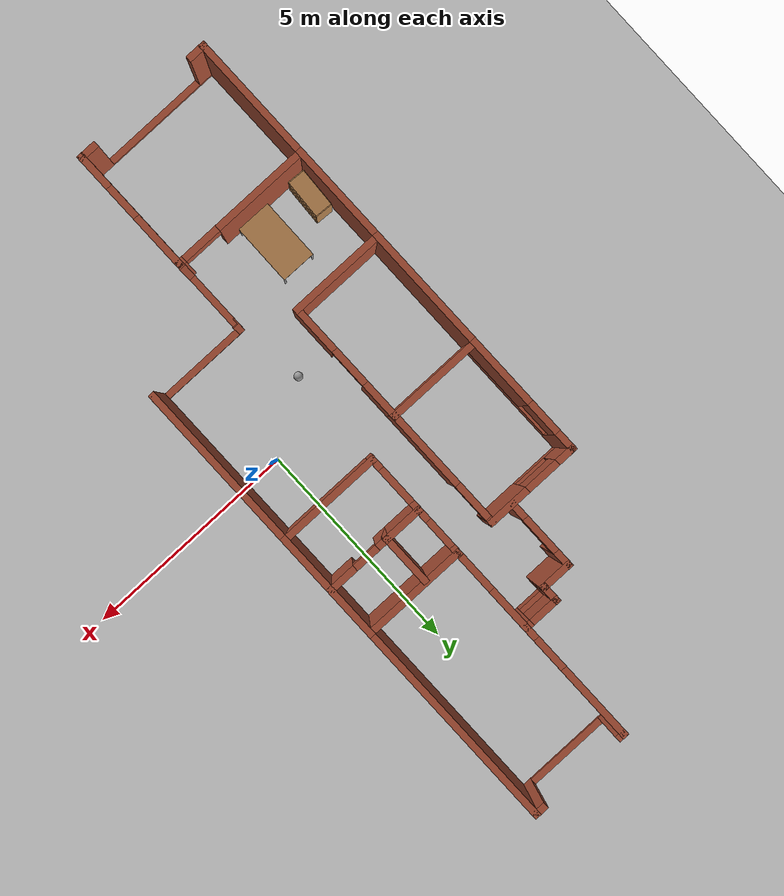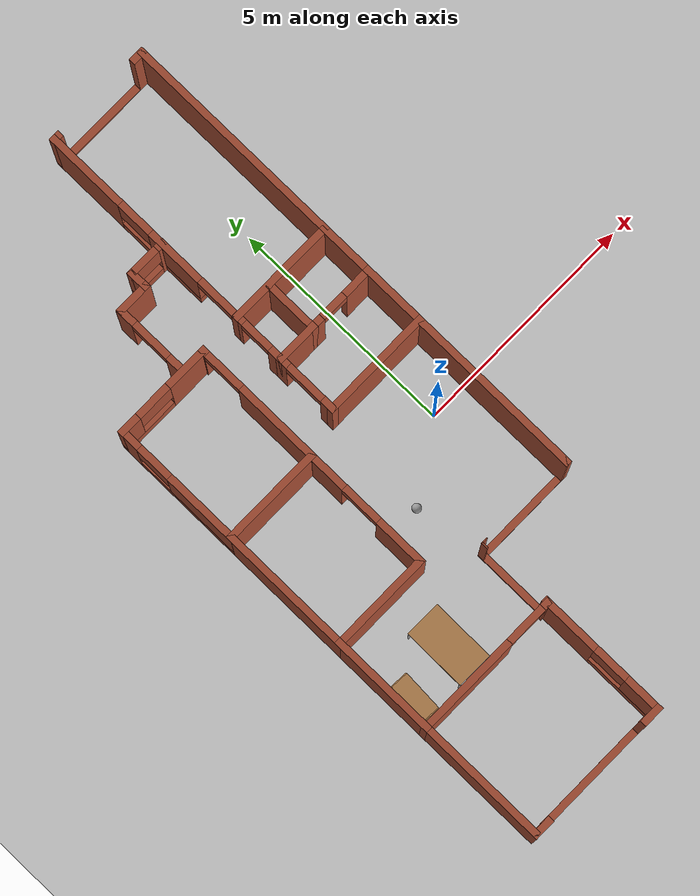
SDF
<sdf version="1.6">
 <world name="default">
  <plugin name="hello" filename="libhello.so"/>
  <light name="sun" type="directional">
   <pose>0 0 10 0 -0 0</pose>
   <diffuse>0.8 0.8 0.8 1</diffuse>
   <specular>0.1 0.1 0.1 1</specular>
   <attenuation>
    <range>1000</range>
    <constant>0.9</constant>
    <linear>0.01</linear>
    <quadratic>0.001</quadratic>
   </attenuation>
   <direction>-0.5 0.5 -1</direction>
  </light>
  <model name="ground_plane">
   <static>1</static>
   <link name="link">
    <collision name="collision">
     <geometry><plane><normal>0 0 1</normal><size>100 100</size></plane></geometry>
     <surface><friction><ode><mu>100</mu><mu2>50</mu2></ode></friction></surface>
    </collision>
    <visual name="visual">
     <cast_shadows>0</cast_shadows>
     <geometry><plane><normal>0 0 1</normal><size>100 100</size></plane></geometry>
     <material>
      <script><uri>file://media/materials/scripts/gazebo.material</uri><name>Gazebo/Grey</name></script>
     </material>
    </visual>
   </link>
  </model>
  <gravity>0 0 -9.8</gravity>
  <magnetic_field>6e-06 2.3e-05 -4.2e-05</magnetic_field>
  <atmosphere type="adiabatic"/>
  <physics name="default_physics" default="0" type="ode">
   <max_step_size>0.001</max_step_size>
   <real_time_factor>1</real_time_factor>
   <real_time_update_rate>1000</real_time_update_rate>
  </physics>
  <scene><ambient>0.4 0.4 0.4 1</ambient><background>0.7 0.7 0.7 1</background><shadows>1</shadows></scene>
  <spherical_coordinates>
   <surface_model>EARTH_WGS84</surface_model>
   <latitude_deg>0</latitude_deg>
   <longitude_deg>0</longitude_deg>
   <elevation>0</elevation>
   <heading_deg>0</heading_deg>
  </spherical_coordinates>
  <model name="Home">
   <pose>-1.82753 0.8177 0 0 -0 0</pose>
   <link name="Wall_10">
    <collision name="Wall_10_Collision">
     <geometry><box><size>1.3 0.15 2.5</size></box></geometry>
     <pose>0 0 1.25 0 -0 0</pose>
    </collision>
    <visual name="Wall_10_Visual">
     <pose>0 0 1.25 0 -0 0</pose>
     <geometry><box><size>1.3 0.15 2.5</size></box></geometry>
     <material>
      <script><uri>file://media/materials/scripts/gazebo.material</uri><name>Gazebo/Bricks</name></script>
      <ambient>1 1 1 1</ambient>
     </material>
    </visual>
    <pose>2.70626 2.39506 0 0 0 -1.5708</pose>
   </link>
   <link name="Wall_12">
    <pose>0.356264 2.39506 0 0 0 -1.5708</pose>
    <visual name="Wall_12_Visual_0">
     <pose>-0.527825 0 1.25 0 -0 0</pose>
     <geometry><box><size>0.24435 0.15 2.5</size></box></geometry>
     <material>
      <script><uri>file://media/materials/scripts/gazebo.material</uri><name>Gazebo/Bricks</name></script>
      <ambient>1 1 1 1</ambient>
     </material>
    </visual>
    <collision name="Wall_12_Collision_0">
     <geometry><box><size>0.24435 0.15 2.5</size></box></geometry>
     <pose>-0.527825 0 1.25 0 -0 0</pose>
    </collision>
    <visual name="Wall_12_Visual_1">
     <pose>0.472175 0 1.25 0 -0 0</pose>
     <geometry><box><size>0.35565 0.15 2.5</size></box></geometry>
     <material>
      <script><uri>file://media/materials/scripts/gazebo.material</uri><name>Gazebo/Bricks</name></script>
      <ambient>1 1 1 1</ambient>
     </material>
    </visual>
    <collision name="Wall_12_Collision_1">
     <geometry><box><size>0.35565 0.15 2.5</size></box></geometry>
     <pose>0.472175 0 1.25 0 -0 0</pose>
    </collision>
    <visual name="Wall_12_Visual_2">
     <pose>-0.05565 0 2.25 0 -0 0</pose>
     <geometry><box><size>0.7 0.15 0.5</size></box></geometry>
     <material>
      <script><uri>file://media/materials/scripts/gazebo.material</uri><name>Gazebo/Bricks</name></script>
      <ambient>1 1 1 1</ambient>
     </material>
    </visual>
    <collision name="Wall_12_Collision_2">
     <geometry><box><size>0.7 0.15 0.5</size></box></geometry>
     <pose>-0.05565 0 2.25 0 -0 0</pose>
    </collision>
   </link>
   <link name="Wall_14">
    <collision name="Wall_14_Collision">
     <geometry><box><size>1 0.15 2.5</size></box></geometry>
     <pose>0 0 1.25 0 -0 0</pose>
    </collision>
    <visual name="Wall_14_Visual">
     <pose>0 0 1.25 0 -0 0</pose>
     <geometry><box><size>1 0.15 2.5</size></box></geometry>
     <material>
      <script><uri>file://media/materials/scripts/gazebo.material</uri><name>Gazebo/Bricks</name></script>
      <ambient>1 1 1 1</ambient>
     </material>
    </visual>
    <pose>0.781264 1.82006 0 0 -0 0</pose>
   </link>
   <link name="Wall_15">
    <collision name="Wall_15_Collision">
     <geometry><box><size>1.25 0.15 2.5</size></box></geometry>
     <pose>0 0 1.25 0 -0 0</pose>
    </collision>
    <visual name="Wall_15_Visual">
     <pose>0 0 1.25 0 -0 0</pose>
     <geometry><box><size>1.25 0.15 2.5</size></box></geometry>
     <material>
      <script><uri>file://media/materials/scripts/gazebo.material</uri><name>Gazebo/Bricks</name></script>
      <ambient>1 1 1 1</ambient>
     </material>
    </visual>
    <pose>1.20626 2.37006 0 0 -0 1.5708</pose>
   </link>
   <link name="Wall_17">
    <pose>1.95626 1.82006 0 0 -0 0</pose>
    <visual name="Wall_17_Visual_0">
     <pose>-0.661575 0 1.25 0 -0 0</pose>
     <geometry><box><size>0.32685 0.15 2.5</size></box></geometry>
     <material>
      <script><uri>file://media/materials/scripts/gazebo.material</uri><name>Gazebo/Bricks</name></script>
      <ambient>1 1 1 1</ambient>
     </material>
    </visual>
    <collision name="Wall_17_Collision_0">
     <geometry><box><size>0.32685 0.15 2.5</size></box></geometry>
     <pose>-0.661575 0 1.25 0 -0 0</pose>
    </collision>
    <visual name="Wall_17_Visual_1">
     <pose>0.463425 0 1.25 0 -0 0</pose>
     <geometry><box><size>0.72315 0.15 2.5</size></box></geometry>
     <material>
      <script><uri>file://media/materials/scripts/gazebo.material</uri><name>Gazebo/Bricks</name></script>
      <ambient>1 1 1 1</ambient>
     </material>
    </visual>
    <collision name="Wall_17_Collision_1">
     <geometry><box><size>0.72315 0.15 2.5</size></box></geometry>
     <pose>0.463425 0 1.25 0 -0 0</pose>
    </collision>
    <visual name="Wall_17_Visual_2">
     <pose>-0.19815 0 2.25 0 -0 0</pose>
     <geometry><box><size>0.6 0.15 0.5</size></box></geometry>
     <material>
      <script><uri>file://media/materials/scripts/gazebo.material</uri><name>Gazebo/Bricks</name></script>
      <ambient>1 1 1 1</ambient>
     </material>
    </visual>
    <collision name="Wall_17_Collision_2">
     <geometry><box><size>0.6 0.15 0.5</size></box></geometry>
     <pose>-0.19815 0 2.25 0 -0 0</pose>
    </collision>
   </link>
   <link name="Wall_19">
    <collision name="Wall_19_Collision">
     <geometry><box><size>1.5 0.15 2.5</size></box></geometry>
     <pose>0 0 1.25 0 -0 0</pose>
    </collision>
    <visual name="Wall_19_Visual">
     <pose>0 0 1.25 0 -0 0</pose>
     <geometry><box><size>1.5 0.15 2.5</size></box></geometry>
     <material>
      <script><uri>file://media/materials/scripts/gazebo.material</uri><name>Gazebo/Bricks</name></script>
      <ambient>1 1 1 1</ambient>
     </material>
    </visual>
    <pose>2.70626 1.14506 0 0 0 -1.5708</pose>
   </link>
   <link name="Wall_20">
    <collision name="Wall_20_Collision">
     <geometry><box><size>2.5 0.15 2.5</size></box></geometry>
     <pose>0 0 1.25 0 -0 0</pose>
    </collision>
    <visual name="Wall_20_Visual">
     <pose>0 0 1.25 0 -0 0</pose>
     <geometry><box><size>2.5 0.15 2.5</size></box></geometry>
     <material>
      <script><uri>file://media/materials/scripts/gazebo.material</uri><name>Gazebo/Bricks</name></script>
      <ambient>1 1 1 1</ambient>
     </material>
    </visual>
    <pose>1.53126 0.470062 0 0 -0 3.14159</pose>
   </link>
   <link name="Wall_21">
    <pose>0.356264 1.14506 0 0 -0 1.5708</pose>
    <visual name="Wall_21_Visual_0">
     <pose>-0.588587 0 1.25 0 -0 0</pose>
     <geometry><box><size>0.322825 0.15 2.5</size></box></geometry>
     <material>
      <script><uri>file://media/materials/scripts/gazebo.material</uri><name>Gazebo/Bricks</name></script>
      <ambient>1 1 1 1</ambient>
     </material>
    </visual>
    <collision name="Wall_21_Collision_0">
     <geometry><box><size>0.322825 0.15 2.5</size></box></geometry>
     <pose>-0.588587 0 1.25 0 -0 0</pose>
    </collision>
    <visual name="Wall_21_Visual_1">
     <pose>0.611413 0 1.25 0 -0 0</pose>
     <geometry><box><size>0.277175 0.15 2.5</size></box></geometry>
     <material>
      <script><uri>file://media/materials/scripts/gazebo.material</uri><name>Gazebo/Bricks</name></script>
      <ambient>1 1 1 1</ambient>
     </material>
    </visual>
    <collision name="Wall_21_Collision_1">
     <geometry><box><size>0.277175 0.15 2.5</size></box></geometry>
     <pose>0.611413 0 1.25 0 -0 0</pose>
    </collision>
    <visual name="Wall_21_Visual_2">
     <pose>0.022825 0 2.25 0 -0 0</pose>
     <geometry><box><size>0.9 0.15 0.5</size></box></geometry>
     <material>
      <script><uri>file://media/materials/scripts/gazebo.material</uri><name>Gazebo/Bricks</name></script>
      <ambient>1 1 1 1</ambient>
     </material>
    </visual>
    <collision name="Wall_21_Collision_2">
     <geometry><box><size>0.9 0.15 0.5</size></box></geometry>
     <pose>0.022825 0 2.25 0 -0 0</pose>
    </collision>
   </link>
   <link name="Wall_23">
    <collision name="Wall_23_Collision">
     <geometry><box><size>4 0.15 2.5</size></box></geometry>
     <pose>0 0 1.25 0 -0 0</pose>
    </collision>
    <visual name="Wall_23_Visual">
     <pose>0 0 1.25 0 -0 0</pose>
     <geometry><box><size>4 0.15 2.5</size></box></geometry>
     <material>
      <script><uri>file://media/materials/scripts/gazebo.material</uri><name>Gazebo/Bricks</name></script>
      <ambient>1 1 1 1</ambient>
     </material>
    </visual>
    <pose>2.70626 -1.45494 0 0 0 -1.5708</pose>
   </link>
   <link name="Wall_24">
    <pose>1.63126 -3.37994 0 0 -0 3.14159</pose>
    <visual name="Wall_24_Visual_0">
     <pose>-1.10165 0 1.25 0 -0 0</pose>
     <geometry><box><size>0.0967 0.15 2.5</size></box></geometry>
     <material>
      <script><uri>file://media/materials/scripts/gazebo.material</uri><name>Gazebo/Bricks</name></script>
      <ambient>1 1 1 1</ambient>
     </material>
    </visual>
    <collision name="Wall_24_Collision_0">
     <geometry><box><size>0.0967 0.15 2.5</size></box></geometry>
     <pose>-1.10165 0 1.25 0 -0 0</pose>
    </collision>
    <visual name="Wall_24_Visual_1">
     <pose>0.04835 0 0.05 0 -0 0</pose>
     <geometry><box><size>2.2033 0.15 0.1</size></box></geometry>
     <material>
      <script><uri>file://media/materials/scripts/gazebo.material</uri><name>Gazebo/Bricks</name></script>
      <ambient>1 1 1 1</ambient>
     </material>
    </visual>
    <collision name="Wall_24_Collision_1">
     <geometry><box><size>2.2033 0.15 0.1</size></box></geometry>
     <pose>0.04835 0 0.05 0 -0 0</pose>
    </collision>
    <visual name="Wall_24_Visual_2">
     <pose>1.1335 0 1.3 0 -0 0</pose>
     <geometry><box><size>0.033 0.15 2.4</size></box></geometry>
     <material>
      <script><uri>file://media/materials/scripts/gazebo.material</uri><name>Gazebo/Bricks</name></script>
      <ambient>1 1 1 1</ambient>
     </material>
    </visual>
    <collision name="Wall_24_Collision_2">
     <geometry><box><size>0.033 0.15 2.4</size></box></geometry>
     <pose>1.1335 0 1.3 0 -0 0</pose>
    </collision>
   </link>
   <link name="Wall_26">
    <pose>-1.63126 2.97971 0 0 -0 3.14159</pose>
    <visual name="Wall_26_Visual_0">
     <pose>-0.638025 0 1.25 0 -0 0</pose>
     <geometry><box><size>1.02395 0.15 2.5</size></box></geometry>
     <material>
      <script><uri>file://media/materials/scripts/gazebo.material</uri><name>Gazebo/Bricks</name></script>
      <ambient>1 1 1 1</ambient>
     </material>
    </visual>
    <collision name="Wall_26_Collision_0">
     <geometry><box><size>1.02395 0.15 2.5</size></box></geometry>
     <pose>-0.638025 0 1.25 0 -0 0</pose>
    </collision>
    <visual name="Wall_26_Visual_1">
     <pose>0.511975 0 0.25 0 -0 0</pose>
     <geometry><box><size>1.27605 0.15 0.5</size></box></geometry>
     <material>
      <script><uri>file://media/materials/scripts/gazebo.material</uri><name>Gazebo/Bricks</name></script>
      <ambient>1 1 1 1</ambient>
     </material>
    </visual>
    <collision name="Wall_26_Collision_1">
     <geometry><box><size>1.27605 0.15 0.5</size></box></geometry>
     <pose>0.511975 0 0.25 0 -0 0</pose>
    </collision>
    <visual name="Wall_26_Visual_2">
     <pose>0.911975 0 1.5 0 -0 0</pose>
     <geometry><box><size>0.47605 0.15 2</size></box></geometry>
     <material>
      <script><uri>file://media/materials/scripts/gazebo.material</uri><name>Gazebo/Bricks</name></script>
      <ambient>1 1 1 1</ambient>
     </material>
    </visual>
    <collision name="Wall_26_Collision_2">
     <geometry><box><size>0.47605 0.15 2</size></box></geometry>
     <pose>0.911975 0 1.5 0 -0 0</pose>
    </collision>
    <visual name="Wall_26_Visual_3">
     <pose>0.27395 0 1.9 0 -0 0</pose>
     <geometry><box><size>0.8 0.15 1.2</size></box></geometry>
     <material>
      <script><uri>file://media/materials/scripts/gazebo.material</uri><name>Gazebo/Bricks</name></script>
      <ambient>1 1 1 1</ambient>
     </material>
    </visual>
    <collision name="Wall_26_Collision_3">
     <geometry><box><size>0.8 0.15 1.2</size></box></geometry>
     <pose>0.27395 0 1.9 0 -0 0</pose>
    </collision>
   </link>
   <link name="Wall_28">
    <pose>-2.70626 1.55471 0 0 0 -1.5708</pose>
    <visual name="Wall_28_Visual_0">
     <pose>-1.24591 0 1.25 0 -0 0</pose>
     <geometry><box><size>0.508175 0.15 2.5</size></box></geometry>
     <material>
      <script><uri>file://media/materials/scripts/gazebo.material</uri><name>Gazebo/Bricks</name></script>
      <ambient>1 1 1 1</ambient>
     </material>
    </visual>
    <collision name="Wall_28_Collision_0">
     <geometry><box><size>0.508175 0.15 2.5</size></box></geometry>
     <pose>-1.24591 0 1.25 0 -0 0</pose>
    </collision>
    <visual name="Wall_28_Visual_1">
     <pose>0.254087 0 0.25 0 -0 0</pose>
     <geometry><box><size>2.49182 0.15 0.5</size></box></geometry>
     <material>
      <script><uri>file://media/materials/scripts/gazebo.material</uri><name>Gazebo/Bricks</name></script>
      <ambient>1 1 1 1</ambient>
     </material>
    </visual>
    <collision name="Wall_28_Collision_1">
     <geometry><box><size>2.49182 0.15 0.5</size></box></geometry>
     <pose>0.254087 0 0.25 0 -0 0</pose>
    </collision>
    <visual name="Wall_28_Visual_2">
     <pose>0.654087 0 1.5 0 -0 0</pose>
     <geometry><box><size>1.69182 0.15 2</size></box></geometry>
     <material>
      <script><uri>file://media/materials/scripts/gazebo.material</uri><name>Gazebo/Bricks</name></script>
      <ambient>1 1 1 1</ambient>
     </material>
    </visual>
    <collision name="Wall_28_Collision_2">
     <geometry><box><size>1.69182 0.15 2</size></box></geometry>
     <pose>0.654087 0 1.5 0 -0 0</pose>
    </collision>
    <visual name="Wall_28_Visual_3">
     <pose>-0.591825 0 1.9 0 -0 0</pose>
     <geometry><box><size>0.8 0.15 1.2</size></box></geometry>
     <material>
      <script><uri>file://media/materials/scripts/gazebo.material</uri><name>Gazebo/Bricks</name></script>
      <ambient>1 1 1 1</ambient>
     </material>
    </visual>
    <collision name="Wall_28_Collision_3">
     <geometry><box><size>0.8 0.15 1.2</size></box></geometry>
     <pose>-0.591825 0 1.9 0 -0 0</pose>
    </collision>
   </link>
   <link name="Wall_29">
    <collision name="Wall_29_Collision">
     <geometry><box><size>2.3 0.15 2.5</size></box></geometry>
     <pose>0 0 1.25 0 -0 0</pose>
    </collision>
    <visual name="Wall_29_Visual">
     <pose>0 0 1.25 0 -0 0</pose>
     <geometry><box><size>2.3 0.15 2.5</size></box></geometry>
     <material>
      <script><uri>file://media/materials/scripts/gazebo.material</uri><name>Gazebo/Bricks</name></script>
      <ambient>1 1 1 1</ambient>
     </material>
    </visual>
    <pose>-1.63126 0.129712 0 0 -0 0</pose>
   </link>
   <link name="Wall_31">
    <pose>-0.556261 1.55471 0 0 -0 1.5708</pose>
    <visual name="Wall_31_Visual_0">
     <pose>-0.540225 0 1.25 0 -0 0</pose>
     <geometry><box><size>1.91955 0.15 2.5</size></box></geometry>
     <material>
      <script><uri>file://media/materials/scripts/gazebo.material</uri><name>Gazebo/Bricks</name></script>
      <ambient>1 1 1 1</ambient>
     </material>
    </visual>
    <collision name="Wall_31_Collision_0">
     <geometry><box><size>1.91955 0.15 2.5</size></box></geometry>
     <pose>-0.540225 0 1.25 0 -0 0</pose>
    </collision>
    <visual name="Wall_31_Visual_1">
     <pose>1.40978 0 1.25 0 -0 0</pose>
     <geometry><box><size>0.18045 0.15 2.5</size></box></geometry>
     <material>
      <script><uri>file://media/materials/scripts/gazebo.material</uri><name>Gazebo/Bricks</name></script>
      <ambient>1 1 1 1</ambient>
     </material>
    </visual>
    <collision name="Wall_31_Collision_1">
     <geometry><box><size>0.18045 0.15 2.5</size></box></geometry>
     <pose>1.40978 0 1.25 0 -0 0</pose>
    </collision>
    <visual name="Wall_31_Visual_2">
     <pose>0.86955 0 2.25 0 -0 0</pose>
     <geometry><box><size>0.9 0.15 0.5</size></box></geometry>
     <material>
      <script><uri>file://media/materials/scripts/gazebo.material</uri><name>Gazebo/Bricks</name></script>
      <ambient>1 1 1 1</ambient>
     </material>
    </visual>
    <collision name="Wall_31_Collision_2">
     <geometry><box><size>0.9 0.15 0.5</size></box></geometry>
     <pose>0.86955 0 2.25 0 -0 0</pose>
    </collision>
   </link>
   <link name="Wall_33">
    <collision name="Wall_33_Collision">
     <geometry><box><size>3 0.15 2.5</size></box></geometry>
     <pose>0 0 1.25 0 -0 0</pose>
    </collision>
    <visual name="Wall_33_Visual">
     <pose>0 0 1.25 0 -0 0</pose>
     <geometry><box><size>3 0.15 2.5</size></box></geometry>
     <material>
      <script><uri>file://media/materials/scripts/gazebo.material</uri><name>Gazebo/Bricks</name></script>
      <ambient>1 1 1 1</ambient>
     </material>
    </visual>
    <pose>-2.70626 -1.29529 0 0 0 -1.5708</pose>
   </link>
   <link name="Wall_34">
    <collision name="Wall_34_Collision">
     <geometry><box><size>2.3 0.15 2.5</size></box></geometry>
     <pose>0 0 1.25 0 -0 0</pose>
    </collision>
    <visual name="Wall_34_Visual">
     <pose>0 0 1.25 0 -0 0</pose>
     <geometry><box><size>2.3 0.15 2.5</size></box></geometry>
     <material>
      <script><uri>file://media/materials/scripts/gazebo.material</uri><name>Gazebo/Bricks</name></script>
      <ambient>1 1 1 1</ambient>
     </material>
    </visual>
    <pose>-1.63126 -2.72029 0 0 -0 0</pose>
   </link>
   <link name="Wall_36">
    <pose>-0.556261 -1.29529 0 0 -0 1.5708</pose>
    <visual name="Wall_36_Visual_0">
     <pose>-0.920437 0 1.25 0 -0 0</pose>
     <geometry><box><size>1.15912 0.15 2.5</size></box></geometry>
     <material>
      <script><uri>file://media/materials/scripts/gazebo.material</uri><name>Gazebo/Bricks</name></script>
      <ambient>1 1 1 1</ambient>
     </material>
    </visual>
    <collision name="Wall_36_Collision_0">
     <geometry><box><size>1.15912 0.15 2.5</size></box></geometry>
     <pose>-0.920437 0 1.25 0 -0 0</pose>
    </collision>
    <visual name="Wall_36_Visual_1">
     <pose>1.02956 0 1.25 0 -0 0</pose>
     <geometry><box><size>0.940875 0.15 2.5</size></box></geometry>
     <material>
      <script><uri>file://media/materials/scripts/gazebo.material</uri><name>Gazebo/Bricks</name></script>
      <ambient>1 1 1 1</ambient>
     </material>
    </visual>
    <collision name="Wall_36_Collision_1">
     <geometry><box><size>0.940875 0.15 2.5</size></box></geometry>
     <pose>1.02956 0 1.25 0 -0 0</pose>
    </collision>
    <visual name="Wall_36_Visual_2">
     <pose>0.109125 0 2.25 0 -0 0</pose>
     <geometry><box><size>0.9 0.15 0.5</size></box></geometry>
     <material>
      <script><uri>file://media/materials/scripts/gazebo.material</uri><name>Gazebo/Bricks</name></script>
      <ambient>1 1 1 1</ambient>
     </material>
    </visual>
    <collision name="Wall_36_Collision_2">
     <geometry><box><size>0.9 0.15 0.5</size></box></geometry>
     <pose>0.109125 0 2.25 0 -0 0</pose>
    </collision>
   </link>
   <link name="Wall_38">
    <collision name="Wall_38_Collision">
     <geometry><box><size>2.4 0.15 2.5</size></box></geometry>
     <pose>0 0 1.25 0 -0 0</pose>
    </collision>
    <visual name="Wall_38_Visual">
     <pose>0 0 1.25 0 -0 0</pose>
     <geometry><box><size>2.4 0.15 2.5</size></box></geometry>
     <material>
      <script><uri>file://media/materials/scripts/gazebo.material</uri><name>Gazebo/Bricks</name></script>
      <ambient>1 1 1 1</ambient>
     </material>
    </visual>
    <pose>-2.70622 -3.84517 0 0 0 -1.57076</pose>
   </link>
   <link name="Wall_40">
    <pose>-1.07519 -4.97006 0 0 -0 0</pose>
    <visual name="Wall_40_Visual_0">
     <pose>-0.554037 0 1.25 0 -0 0</pose>
     <geometry><box><size>2.30393 0.15 2.5</size></box></geometry>
     <material>
      <script><uri>file://media/materials/scripts/gazebo.material</uri><name>Gazebo/Bricks</name></script>
      <ambient>1 1 1 1</ambient>
     </material>
    </visual>
    <collision name="Wall_40_Collision_0">
     <geometry><box><size>2.30393 0.15 2.5</size></box></geometry>
     <pose>-0.554037 0 1.25 0 -0 0</pose>
    </collision>
    <visual name="Wall_40_Visual_1">
     <pose>1.60196 0 1.25 0 -0 0</pose>
     <geometry><box><size>0.208075 0.15 2.5</size></box></geometry>
     <material>
      <script><uri>file://media/materials/scripts/gazebo.material</uri><name>Gazebo/Bricks</name></script>
      <ambient>1 1 1 1</ambient>
     </material>
    </visual>
    <collision name="Wall_40_Collision_1">
     <geometry><box><size>0.208075 0.15 2.5</size></box></geometry>
     <pose>1.60196 0 1.25 0 -0 0</pose>
    </collision>
    <visual name="Wall_40_Visual_2">
     <pose>1.04792 0 2.25 0 -0 0</pose>
     <geometry><box><size>0.9 0.15 0.5</size></box></geometry>
     <material>
      <script><uri>file://media/materials/scripts/gazebo.material</uri><name>Gazebo/Bricks</name></script>
      <ambient>1 1 1 1</ambient>
     </material>
    </visual>
    <collision name="Wall_40_Collision_2">
     <geometry><box><size>0.9 0.15 0.5</size></box></geometry>
     <pose>1.04792 0 2.25 0 -0 0</pose>
    </collision>
   </link>
   <link name="Wall_42">
    <pose>0.556039 -4.175 0 0 -0 1.57051</pose>
    <visual name="Wall_42_Visual_0">
     <pose>-0.780496 0 1.25 0 -0 0</pose>
     <geometry><box><size>0.179133 0.15 2.5</size></box></geometry>
     <material>
      <script><uri>file://media/materials/scripts/gazebo.material</uri><name>Gazebo/Bricks</name></script>
      <ambient>1 1 1 1</ambient>
     </material>
    </visual>
    <collision name="Wall_42_Collision_0">
     <geometry><box><size>0.179133 0.15 2.5</size></box></geometry>
     <pose>-0.780496 0 1.25 0 -0 0</pose>
    </collision>
    <visual name="Wall_42_Visual_1">
     <pose>0.089567 0 0.05 0 -0 0</pose>
     <geometry><box><size>1.56099 0.15 0.1</size></box></geometry>
     <material>
      <script><uri>file://media/materials/scripts/gazebo.material</uri><name>Gazebo/Bricks</name></script>
      <ambient>1 1 1 1</ambient>
     </material>
    </visual>
    <collision name="Wall_42_Collision_1">
     <geometry><box><size>1.56099 0.15 0.1</size></box></geometry>
     <pose>0.089567 0 0.05 0 -0 0</pose>
    </collision>
    <visual name="Wall_42_Visual_2">
     <pose>0.859872 0 1.3 0 -0 0</pose>
     <geometry><box><size>0.020381 0.15 2.4</size></box></geometry>
     <material>
      <script><uri>file://media/materials/scripts/gazebo.material</uri><name>Gazebo/Bricks</name></script>
      <ambient>1 1 1 1</ambient>
     </material>
    </visual>
    <collision name="Wall_42_Collision_2">
     <geometry><box><size>0.020381 0.15 2.4</size></box></geometry>
     <pose>0.859872 0 1.3 0 -0 0</pose>
    </collision>
   </link>
   <link name="Wall_44">
    <collision name="Wall_44_Collision">
     <geometry><box><size>3 0.15 2.5</size></box></geometry>
     <pose>0 0 1.25 0 -0 0</pose>
    </collision>
    <visual name="Wall_44_Visual">
     <pose>0 0 1.25 0 -0 0</pose>
     <geometry><box><size>3 0.15 2.5</size></box></geometry>
     <material>
      <script><uri>file://media/materials/scripts/gazebo.material</uri><name>Gazebo/Bricks</name></script>
      <ambient>1 1 1 1</ambient>
     </material>
    </visual>
    <pose>-2.70619 -6.39506 0 0 0 -1.5708</pose>
   </link>
   <link name="Wall_46">
    <pose>0.555814 -6.39506 0 0 0 -1.5708</pose>
    <visual name="Wall_46_Visual_0">
     <pose>-0.836713 0 1.25 0 -0 0</pose>
     <geometry><box><size>1.32658 0.15 2.5</size></box></geometry>
     <material>
      <script><uri>file://media/materials/scripts/gazebo.material</uri><name>Gazebo/Bricks</name></script>
      <ambient>1 1 1 1</ambient>
     </material>
    </visual>
    <collision name="Wall_46_Collision_0">
     <geometry><box><size>1.32658 0.15 2.5</size></box></geometry>
     <pose>-0.836713 0 1.25 0 -0 0</pose>
    </collision>
    <visual name="Wall_46_Visual_1">
     <pose>0.663287 0 0.25 0 -0 0</pose>
     <geometry><box><size>1.67342 0.15 0.5</size></box></geometry>
     <material>
      <script><uri>file://media/materials/scripts/gazebo.material</uri><name>Gazebo/Bricks</name></script>
      <ambient>1 1 1 1</ambient>
     </material>
    </visual>
    <collision name="Wall_46_Collision_1">
     <geometry><box><size>1.67342 0.15 0.5</size></box></geometry>
     <pose>0.663287 0 0.25 0 -0 0</pose>
    </collision>
    <visual name="Wall_46_Visual_2">
     <pose>1.06329 0 1.5 0 -0 0</pose>
     <geometry><box><size>0.873425 0.15 2</size></box></geometry>
     <material>
      <script><uri>file://media/materials/scripts/gazebo.material</uri><name>Gazebo/Bricks</name></script>
      <ambient>1 1 1 1</ambient>
     </material>
    </visual>
    <collision name="Wall_46_Collision_2">
     <geometry><box><size>0.873425 0.15 2</size></box></geometry>
     <pose>1.06329 0 1.5 0 -0 0</pose>
    </collision>
    <visual name="Wall_46_Visual_3">
     <pose>0.226575 0 1.9 0 -0 0</pose>
     <geometry><box><size>0.8 0.15 1.2</size></box></geometry>
     <material>
      <script><uri>file://media/materials/scripts/gazebo.material</uri><name>Gazebo/Bricks</name></script>
      <ambient>1 1 1 1</ambient>
     </material>
    </visual>
    <collision name="Wall_46_Collision_3">
     <geometry><box><size>0.8 0.15 1.2</size></box></geometry>
     <pose>0.226575 0 1.9 0 -0 0</pose>
    </collision>
   </link>
   <link name="Wall_47">
    <pose>-1.07519 -7.82006 0 0 -0 3.14159</pose>
    <visual name="Wall_47_Visual_0">
     <pose>-1.46958 0 1.25 0 -0 0</pose>
     <geometry><box><size>0.47285 0.15 2.5</size></box></geometry>
     <material>
      <script><uri>file://media/materials/scripts/gazebo.material</uri><name>Gazebo/Bricks</name></script>
      <ambient>1 1 1 1</ambient>
     </material>
    </visual>
    <collision name="Wall_47_Collision_0">
     <geometry><box><size>0.47285 0.15 2.5</size></box></geometry>
     <pose>-1.46958 0 1.25 0 -0 0</pose>
    </collision>
    <visual name="Wall_47_Visual_1">
     <pose>0.236425 0 0.05 0 -0 0</pose>
     <geometry><box><size>2.93915 0.15 0.1</size></box></geometry>
     <material>
      <script><uri>file://media/materials/scripts/gazebo.material</uri><name>Gazebo/Bricks</name></script>
      <ambient>1 1 1 1</ambient>
     </material>
    </visual>
    <collision name="Wall_47_Collision_1">
     <geometry><box><size>2.93915 0.15 0.1</size></box></geometry>
     <pose>0.236425 0 0.05 0 -0 0</pose>
    </collision>
    <visual name="Wall_47_Visual_2">
     <pose>1.46643 0 1.3 0 -0 0</pose>
     <geometry><box><size>0.47915 0.15 2.4</size></box></geometry>
     <material>
      <script><uri>file://media/materials/scripts/gazebo.material</uri><name>Gazebo/Bricks</name></script>
      <ambient>1 1 1 1</ambient>
     </material>
    </visual>
    <collision name="Wall_47_Collision_2">
     <geometry><box><size>0.47915 0.15 2.4</size></box></geometry>
     <pose>1.46643 0 1.3 0 -0 0</pose>
    </collision>
   </link>
   <link name="Wall_5">
    <pose>0.356264 5.39506 0 0 0 -1.5708</pose>
    <visual name="Wall_5_Visual_0">
     <pose>-1.58466 0 1.25 0 -0 0</pose>
     <geometry><box><size>1.83068 0.15 2.5</size></box></geometry>
     <material>
      <script><uri>file://media/materials/scripts/gazebo.material</uri><name>Gazebo/Bricks</name></script>
      <ambient>1 1 1 1</ambient>
     </material>
    </visual>
    <collision name="Wall_5_Collision_0">
     <geometry><box><size>1.83068 0.15 2.5</size></box></geometry>
     <pose>-1.58466 0 1.25 0 -0 0</pose>
    </collision>
    <visual name="Wall_5_Visual_1">
     <pose>2.41818 0 1.25 0 -0 0</pose>
     <geometry><box><size>0.16365 0.15 2.5</size></box></geometry>
     <material>
      <script><uri>file://media/materials/scripts/gazebo.material</uri><name>Gazebo/Bricks</name></script>
      <ambient>1 1 1 1</ambient>
     </material>
    </visual>
    <collision name="Wall_5_Collision_1">
     <geometry><box><size>0.16365 0.15 2.5</size></box></geometry>
     <pose>2.41818 0 1.25 0 -0 0</pose>
    </collision>
    <visual name="Wall_5_Visual_2">
     <pose>0.383512 0 0.25 0 -0 0</pose>
     <geometry><box><size>2.10568 0.15 0.5</size></box></geometry>
     <material>
      <script><uri>file://media/materials/scripts/gazebo.material</uri><name>Gazebo/Bricks</name></script>
      <ambient>1 1 1 1</ambient>
     </material>
    </visual>
    <collision name="Wall_5_Collision_2">
     <geometry><box><size>2.10568 0.15 0.5</size></box></geometry>
     <pose>0.383512 0 0.25 0 -0 0</pose>
    </collision>
    <visual name="Wall_5_Visual_3">
     <pose>0.783512 0 1.5 0 -0 0</pose>
     <geometry><box><size>1.30567 0.15 2</size></box></geometry>
     <material>
      <script><uri>file://media/materials/scripts/gazebo.material</uri><name>Gazebo/Bricks</name></script>
      <ambient>1 1 1 1</ambient>
     </material>
    </visual>
    <collision name="Wall_5_Collision_3">
     <geometry><box><size>1.30567 0.15 2</size></box></geometry>
     <pose>0.783512 0 1.5 0 -0 0</pose>
    </collision>
    <visual name="Wall_5_Visual_4">
     <pose>-0.269325 0 1.9 0 -0 0</pose>
     <geometry><box><size>0.8 0.15 1.2</size></box></geometry>
     <material>
      <script><uri>file://media/materials/scripts/gazebo.material</uri><name>Gazebo/Bricks</name></script>
      <ambient>1 1 1 1</ambient>
     </material>
    </visual>
    <collision name="Wall_5_Collision_4">
     <geometry><box><size>0.8 0.15 1.2</size></box></geometry>
     <pose>-0.269325 0 1.9 0 -0 0</pose>
    </collision>
    <visual name="Wall_5_Visual_5">
     <pose>1.88635 0 2.25 0 -0 0</pose>
     <geometry><box><size>0.9 0.15 0.5</size></box></geometry>
     <material>
      <script><uri>file://media/materials/scripts/gazebo.material</uri><name>Gazebo/Bricks</name></script>
      <ambient>1 1 1 1</ambient>
     </material>
    </visual>
    <collision name="Wall_5_Collision_5">
     <geometry><box><size>0.9 0.15 0.5</size></box></geometry>
     <pose>1.88635 0 2.25 0 -0 0</pose>
    </collision>
   </link>
   <link name="Wall_50">
    <pose>-0.044186 4.96994 0 0 -0 3.14159</pose>
    <visual name="Wall_50_Visual_0">
     <pose>-0.3629 0 1.25 0 -0 0</pose>
     <geometry><box><size>0.2242 0.15 2.5</size></box></geometry>
     <material>
      <script><uri>file://media/materials/scripts/gazebo.material</uri><name>Gazebo/Bricks</name></script>
      <ambient>1 1 1 1</ambient>
     </material>
    </visual>
    <collision name="Wall_50_Collision_0">
     <geometry><box><size>0.2242 0.15 2.5</size></box></geometry>
     <pose>-0.3629 0 1.25 0 -0 0</pose>
    </collision>
    <visual name="Wall_50_Visual_1">
     <pose>0.1121 0 0.25 0 -0 0</pose>
     <geometry><box><size>0.7258 0.15 0.5</size></box></geometry>
     <material>
      <script><uri>file://media/materials/scripts/gazebo.material</uri><name>Gazebo/Bricks</name></script>
      <ambient>1 1 1 1</ambient>
     </material>
    </visual>
    <collision name="Wall_50_Collision_1">
     <geometry><box><size>0.7258 0.15 0.5</size></box></geometry>
     <pose>0.1121 0 0.25 0 -0 0</pose>
    </collision>
    <visual name="Wall_50_Visual_2">
     <pose>0.4121 0 1.5 0 -0 0</pose>
     <geometry><box><size>0.1258 0.15 2</size></box></geometry>
     <material>
      <script><uri>file://media/materials/scripts/gazebo.material</uri><name>Gazebo/Bricks</name></script>
      <ambient>1 1 1 1</ambient>
     </material>
    </visual>
    <collision name="Wall_50_Collision_2">
     <geometry><box><size>0.1258 0.15 2</size></box></geometry>
     <pose>0.4121 0 1.5 0 -0 0</pose>
    </collision>
    <visual name="Wall_50_Visual_3">
     <pose>0.0492 0 1.9 0 -0 0</pose>
     <geometry><box><size>0.6 0.15 1.2</size></box></geometry>
     <material>
      <script><uri>file://media/materials/scripts/gazebo.material</uri><name>Gazebo/Bricks</name></script>
      <ambient>1 1 1 1</ambient>
     </material>
    </visual>
    <collision name="Wall_50_Collision_3">
     <geometry><box><size>0.6 0.15 1.2</size></box></geometry>
     <pose>0.0492 0 1.9 0 -0 0</pose>
    </collision>
   </link>
   <link name="Wall_52">
    <collision name="Wall_52_Collision">
     <geometry><box><size>0.5 0.15 2.5</size></box></geometry>
     <pose>0 0 1.25 0 -0 0</pose>
    </collision>
    <visual name="Wall_52_Visual">
     <pose>0 0 1.25 0 -0 0</pose>
     <geometry><box><size>0.5 0.15 2.5</size></box></geometry>
     <material>
      <script><uri>file://media/materials/scripts/gazebo.material</uri><name>Gazebo/Bricks</name></script>
      <ambient>1 1 1 1</ambient>
     </material>
    </visual>
    <pose>-0.444186 4.79494 0 0 0 -1.5708</pose>
   </link>
   <link name="Wall_53">
    <collision name="Wall_53_Collision">
     <geometry><box><size>0.8 0.15 2.5</size></box></geometry>
     <pose>0 0 1.25 0 -0 0</pose>
    </collision>
    <visual name="Wall_53_Visual">
     <pose>0 0 1.25 0 -0 0</pose>
     <geometry><box><size>0.8 0.15 2.5</size></box></geometry>
     <material>
      <script><uri>file://media/materials/scripts/gazebo.material</uri><name>Gazebo/Bricks</name></script>
      <ambient>1 1 1 1</ambient>
     </material>
    </visual>
    <pose>-0.769186 4.61994 0 0 -0 3.14159</pose>
   </link>
   <link name="Wall_55">
    <pose>-1.09419 3.81994 0 0 0 -1.5708</pose>
    <visual name="Wall_55_Visual_0">
     <pose>-0.658975 0 1.25 0 -0 0</pose>
     <geometry><box><size>0.43205 0.15 2.5</size></box></geometry>
     <material>
      <script><uri>file://media/materials/scripts/gazebo.material</uri><name>Gazebo/Bricks</name></script>
      <ambient>1 1 1 1</ambient>
     </material>
    </visual>
    <collision name="Wall_55_Collision_0">
     <geometry><box><size>0.43205 0.15 2.5</size></box></geometry>
     <pose>-0.658975 0 1.25 0 -0 0</pose>
    </collision>
    <visual name="Wall_55_Visual_1">
     <pose>0.666025 0 1.25 0 -0 0</pose>
     <geometry><box><size>0.41795 0.15 2.5</size></box></geometry>
     <material>
      <script><uri>file://media/materials/scripts/gazebo.material</uri><name>Gazebo/Bricks</name></script>
      <ambient>1 1 1 1</ambient>
     </material>
    </visual>
    <collision name="Wall_55_Collision_1">
     <geometry><box><size>0.41795 0.15 2.5</size></box></geometry>
     <pose>0.666025 0 1.25 0 -0 0</pose>
    </collision>
    <visual name="Wall_55_Visual_2">
     <pose>0.00705 0 2.25 0 -0 0</pose>
     <geometry><box><size>0.9 0.15 0.5</size></box></geometry>
     <material>
      <script><uri>file://media/materials/scripts/gazebo.material</uri><name>Gazebo/Bricks</name></script>
      <ambient>1 1 1 1</ambient>
     </material>
    </visual>
    <collision name="Wall_55_Collision_2">
     <geometry><box><size>0.9 0.15 0.5</size></box></geometry>
     <pose>0.00705 0 2.25 0 -0 0</pose>
    </collision>
   </link>
   <link name="Wall_6">
    <collision name="Wall_6_Collision">
     <geometry><box><size>2.5 0.15 2.5</size></box></geometry>
     <pose>0 0 1.25 0 -0 0</pose>
    </collision>
    <visual name="Wall_6_Visual">
     <pose>0 0 1.25 0 -0 0</pose>
     <geometry><box><size>2.5 0.15 2.5</size></box></geometry>
     <material>
      <script><uri>file://media/materials/scripts/gazebo.material</uri><name>Gazebo/Bricks</name></script>
      <ambient>1 1 1 1</ambient>
     </material>
    </visual>
    <pose>1.53126 2.97006 0 0 -0 0</pose>
   </link>
   <link name="Wall_7">
    <collision name="Wall_7_Collision">
     <geometry><box><size>5 0.15 2.5</size></box></geometry>
     <pose>0 0 1.25 0 -0 0</pose>
    </collision>
    <visual name="Wall_7_Visual">
     <pose>0 0 1.25 0 -0 0</pose>
     <geometry><box><size>5 0.15 2.5</size></box></geometry>
     <material>
      <script><uri>file://media/materials/scripts/gazebo.material</uri><name>Gazebo/Bricks</name></script>
      <ambient>1 1 1 1</ambient>
     </material>
    </visual>
    <pose>2.70626 5.39506 0 0 -0 1.5708</pose>
   </link>
   <link name="Wall_8">
    <pose>1.53126 7.82006 0 0 -0 3.14159</pose>
    <visual name="Wall_8_Visual_0">
     <pose>-1.07771 0 1.25 0 -0 0</pose>
     <geometry><box><size>0.344584 0.15 2.5</size></box></geometry>
     <material>
      <script><uri>file://media/materials/scripts/gazebo.material</uri><name>Gazebo/Bricks</name></script>
      <ambient>1 1 1 1</ambient>
     </material>
    </visual>
    <collision name="Wall_8_Collision_0">
     <geometry><box><size>0.344584 0.15 2.5</size></box></geometry>
     <pose>-1.07771 0 1.25 0 -0 0</pose>
    </collision>
    <visual name="Wall_8_Visual_1">
     <pose>0.172292 0 0.05 0 -0 0</pose>
     <geometry><box><size>2.15542 0.15 0.1</size></box></geometry>
     <material>
      <script><uri>file://media/materials/scripts/gazebo.material</uri><name>Gazebo/Bricks</name></script>
      <ambient>1 1 1 1</ambient>
     </material>
    </visual>
    <collision name="Wall_8_Collision_1">
     <geometry><box><size>2.15542 0.15 0.1</size></box></geometry>
     <pose>0.172292 0 0.05 0 -0 0</pose>
    </collision>
    <visual name="Wall_8_Visual_2">
     <pose>1.12837 0 1.3 0 -0 0</pose>
     <geometry><box><size>0.243264 0.15 2.4</size></box></geometry>
     <material>
      <script><uri>file://media/materials/scripts/gazebo.material</uri><name>Gazebo/Bricks</name></script>
      <ambient>1 1 1 1</ambient>
     </material>
    </visual>
    <collision name="Wall_8_Collision_2">
     <geometry><box><size>0.243264 0.15 2.4</size></box></geometry>
     <pose>1.12837 0 1.3 0 -0 0</pose>
    </collision>
   </link>
   <static>1</static>
  </model>
  <model name="table">
   <static>0</static>
   <link name="link">
    <collision name="surface">
     <pose>0 0 1 0 -0 0</pose>
     <geometry><box><size>1.5 0.8 0.03</size></box></geometry>
     <surface><friction><ode><mu>0.6</mu><mu2>0.6</mu2></ode></friction></surface>
    </collision>
    <visual name="visual1">
     <pose>0 0 1 0 -0 0</pose>
     <geometry><box><size>1.4 0.8 0.04</size></box></geometry>
     <material>
      <script><uri>file://media/materials/scripts/gazebo.material</uri><name>Gazebo/Wood</name></script>
     </material>
    </visual>
    <collision name="front_left_leg">
     <pose>0.68 0.38 0.5 0 -0 0</pose>
     <geometry><cylinder><radius>0.02</radius><length>1</length></cylinder></geometry>
    </collision>
    <visual name="front_left_leg">
     <pose>0.68 0.38 0.5 0 -0 0</pose>
     <geometry><cylinder><radius>0.02</radius><length>1</length></cylinder></geometry>
     <material>
      <script><uri>file://media/materials/scripts/gazebo.material</uri><name>Gazebo/Grey</name></script>
     </material>
    </visual>
    <collision name="front_right_leg">
     <pose>0.68 -0.38 0.5 0 -0 0</pose>
     <geometry><cylinder><radius>0.02</radius><length>1</length></cylinder></geometry>
    </collision>
    <visual name="front_right_leg">
     <pose>0.68 -0.38 0.5 0 -0 0</pose>
     <geometry><cylinder><radius>0.02</radius><length>1</length></cylinder></geometry>
     <material>
      <script><uri>file://media/materials/scripts/gazebo.material</uri><name>Gazebo/Grey</name></script>
     </material>
    </visual>
    <collision name="back_right_leg">
     <pose>-0.68 -0.38 0.5 0 -0 0</pose>
     <geometry><cylinder><radius>0.02</radius><length>1</length></cylinder></geometry>
    </collision>
    <visual name="back_right_leg">
     <pose>-0.68 -0.38 0.5 0 -0 0</pose>
     <geometry><cylinder><radius>0.02</radius><length>1</length></cylinder></geometry>
     <material>
      <script><uri>file://media/materials/scripts/gazebo.material</uri><name>Gazebo/Grey</name></script>
     </material>
    </visual>
    <collision name="back_left_leg">
     <pose>-0.68 0.38 0.5 0 -0 0</pose>
     <geometry><cylinder><radius>0.02</radius><length>1</length></cylinder></geometry>
    </collision>
    <visual name="back_left_leg">
     <pose>-0.68 0.38 0.5 0 -0 0</pose>
     <geometry><cylinder><radius>0.02</radius><length>1</length></cylinder></geometry>
     <material>
      <script><uri>file://media/materials/scripts/gazebo.material</uri><name>Gazebo/Grey</name></script>
     </material>
    </visual>
    <inertial>
     <inertia><ixx>1</ixx><ixy>0</ixy><ixz>0</ixz><iyy>1</iyy><iyz>0</iyz><izz>1</izz></inertia>
     <mass>1</mass>
    </inertial>
   </link>
   <pose>-3.04042 -3.32569 0.001326 -6e-06 0.001891 1.5619</pose>
  </model>
  <model name="bookshelf">
   <static>1</static>
   <link name="link">
    <inertial><mass>1</mass></inertial>
    <collision name="back">
     <pose>0 0.005 0.6 0 -0 0</pose>
     <geometry><box><size>0.9 0.01 1.2</size></box></geometry>
    </collision>
    <visual name="visual1">
     <pose>0 0.005 0.6 0 -0 0</pose>
     <geometry><box><size>0.9 0.01 1.2</size></box></geometry>
     <material>
      <script><uri>file://media/materials/scripts/gazebo.material</uri><name>Gazebo/Wood</name></script>
     </material>
    </visual>
    <collision name="left_side">
     <pose>0.45 -0.195 0.6 0 -0 0</pose>
     <geometry><box><size>0.02 0.4 1.2</size></box></geometry>
    </collision>
    <visual name="visual2">
     <pose>0.45 -0.195 0.6 0 -0 0</pose>
     <geometry><box><size>0.02 0.4 1.2</size></box></geometry>
     <material>
      <script><uri>file://media/materials/scripts/gazebo.material</uri><name>Gazebo/Wood</name></script>
     </material>
    </visual>
    <collision name="right_side">
     <pose>-0.45 -0.195 0.6 0 -0 0</pose>
     <geometry><box><size>0.02 0.4 1.2</size></box></geometry>
    </collision>
    <visual name="visual3">
     <pose>-0.45 -0.195 0.6 0 -0 0</pose>
     <geometry><box><size>0.02 0.4 1.2</size></box></geometry>
     <material>
      <script><uri>file://media/materials/scripts/gazebo.material</uri><name>Gazebo/Wood</name></script>
     </material>
    </visual>
    <collision name="bottom">
     <pose>0 -0.195 0.03 0 -0 0</pose>
     <geometry><box><size>0.88 0.4 0.06</size></box></geometry>
    </collision>
    <visual name="visual4">
     <pose>0 -0.195 0.03 0 -0 0</pose>
     <geometry><box><size>0.88 0.4 0.06</size></box></geometry>
     <material>
      <script><uri>file://media/materials/scripts/gazebo.material</uri><name>Gazebo/Wood</name></script>
     </material>
    </visual>
    <collision name="top">
     <pose>0 -0.195 1.19 0 -0 0</pose>
     <geometry><box><size>0.88 0.4 0.02</size></box></geometry>
    </collision>
    <visual name="visual5">
     <pose>0 -0.195 1.19 0 -0 0</pose>
     <geometry><box><size>0.88 0.4 0.02</size></box></geometry>
     <material>
      <script><uri>file://media/materials/scripts/gazebo.material</uri><name>Gazebo/Wood</name></script>
     </material>
    </visual>
    <collision name="low_shelf">
     <pose>0 -0.195 0.43 0 -0 0</pose>
     <geometry><box><size>0.88 0.4 0.02</size></box></geometry>
    </collision>
    <visual name="visual6">
     <pose>0 -0.195 0.43 0 -0 0</pose>
     <geometry><box><size>0.88 0.4 0.02</size></box></geometry>
     <material>
      <script><uri>file://media/materials/scripts/gazebo.material</uri><name>Gazebo/Wood</name></script>
     </material>
    </visual>
    <collision name="high_shelf">
     <pose>0 -0.195 0.8 0 -0 0</pose>
     <geometry><box><size>0.88 0.4 0.02</size></box></geometry>
    </collision>
    <visual name="visual7">
     <pose>0 -0.195 0.8 0 -0 0</pose>
     <geometry><box><size>0.88 0.4 0.02</size></box></geometry>
     <material>
      <script><uri>file://media/materials/scripts/gazebo.material</uri><name>Gazebo/Wood</name></script>
     </material>
    </visual>
   </link>
   <pose>-4.40969 -3.5576 0 0 -0 1.51749</pose>
  </model>
  <model name="my_ball_0">
   <link name="link_1">
    <inertial>
     <mass>1</mass>
     <inertia><ixx>0.1</ixx><ixy>0</ixy><ixz>0</ixz><iyy>0.1</iyy><iyz>0</iyz><izz>0.1</izz></inertia>
    </inertial>
    <visual name="visual">
     <geometry><sphere><radius>0.1</radius></sphere></geometry>
     <material>
      <lighting>1</lighting>
      <script><uri>file://media/materials/scripts/gazebo.material</uri><name>Gazebo/Grey</name></script>
      <ambient>1 1 1 1</ambient>
      <diffuse>1 1 1 1</diffuse>
      <specular>1 1 1 1</specular>
      <emissive>1 1 1 1</emissive>
      <shader type="vertex"><normal_map>__default__</normal_map></shader>
     </material>
    </visual>
    <collision name="collision">
     <geometry><sphere><radius>0.1</radius></sphere></geometry>
     <surface>
      <friction>
       <ode><mu>1</mu><mu2>1</mu2><fdir1>0 0 0</fdir1><slip1>0</slip1><slip2>0</slip2></ode>
       <torsional>
        <coefficient>1</coefficient>
        <patch_radius>0</patch_radius>
        <surface_radius>0</surface_radius>
        <use_patch_radius>1</use_patch_radius>
        <ode><slip>0</slip></ode>
       </torsional>
      </friction>
      <bounce><restitution_coefficient>0</restitution_coefficient><threshold>1e+06</threshold></bounce>
      <contact>
       <collide_without_contact>0</collide_without_contact>
       <collide_without_contact_bitmask>1</collide_without_contact_bitmask>
       <collide_bitmask>1</collide_bitmask>
       <ode>
        <soft_cfm>0</soft_cfm>
        <soft_erp>0.2</soft_erp>
        <kp>1e+13</kp>
        <kd>1</kd>
        <max_vel>0.01</max_vel>
        <min_depth>0</min_depth>
       </ode>
       <bullet>
        <split_impulse>1</split_impulse>
        <split_impulse_penetration_threshold>-0.01</split_impulse_penetration_threshold>
        <soft_cfm>0</soft_cfm>
        <soft_erp>0.2</soft_erp>
        <kp>1e+13</kp>
        <kd>1</kd>
       </bullet>
      </contact>
     </surface>
    </collision>
   </link>
   <static>0</static>
   <pose>-1.51418 -1.00858 0.1 0 -0 0</pose>
  </model>
 </world>
</sdf>
